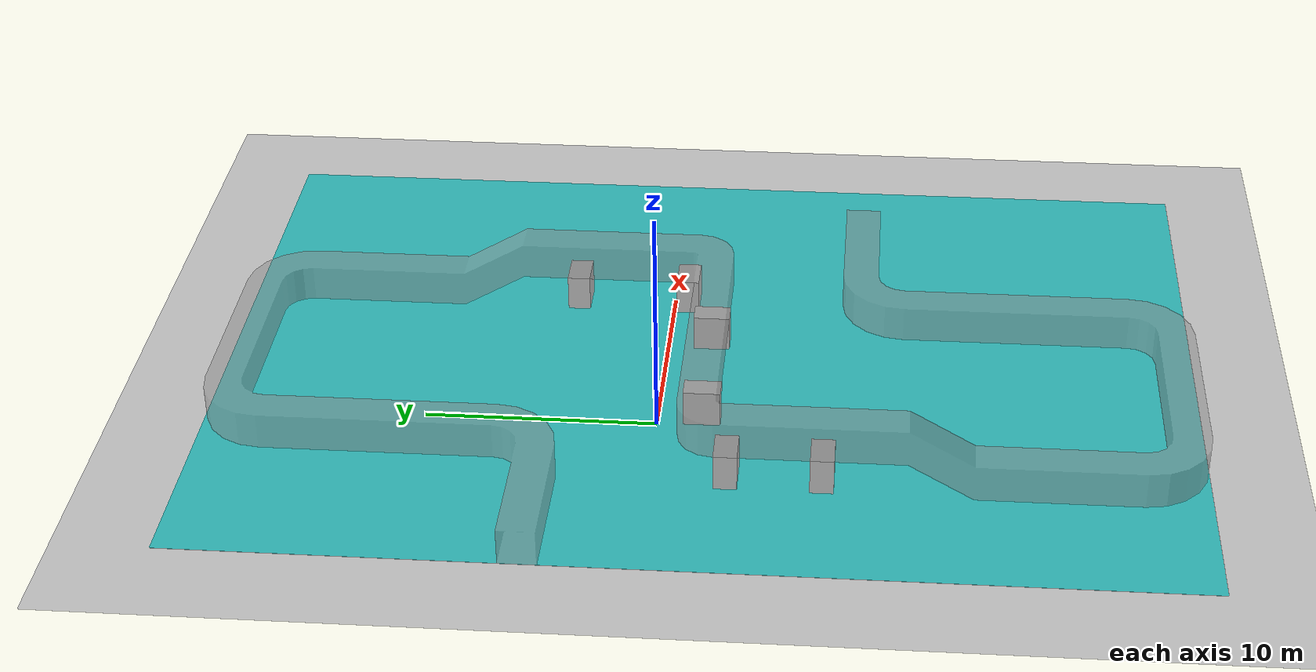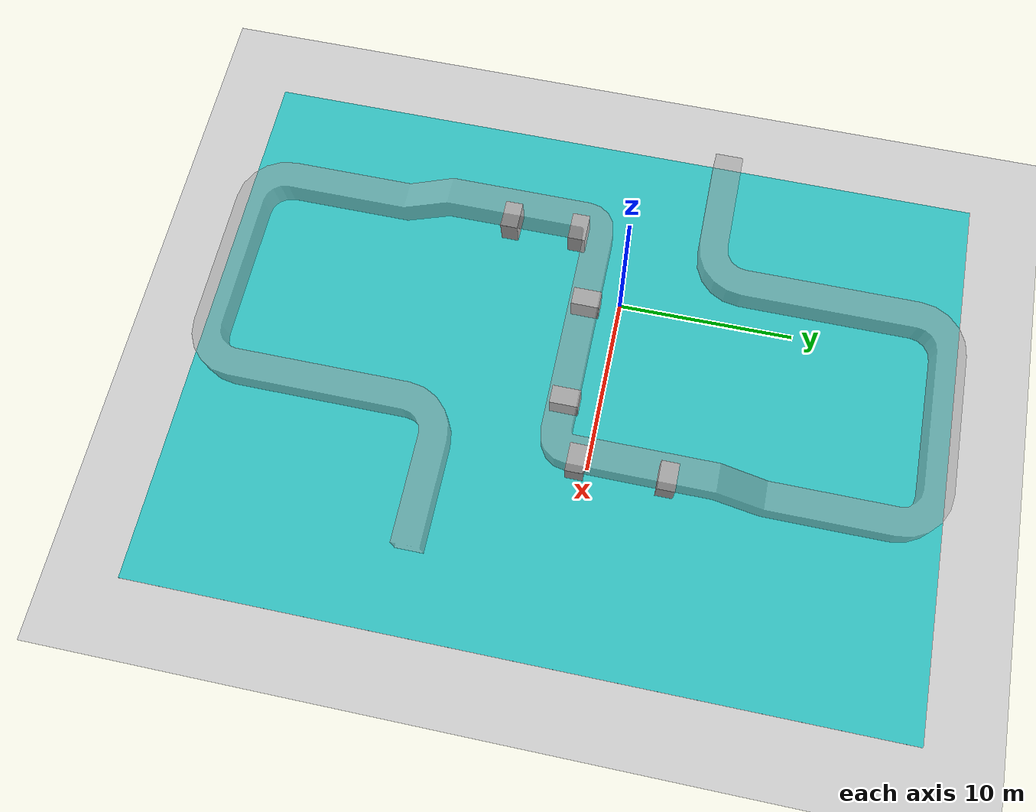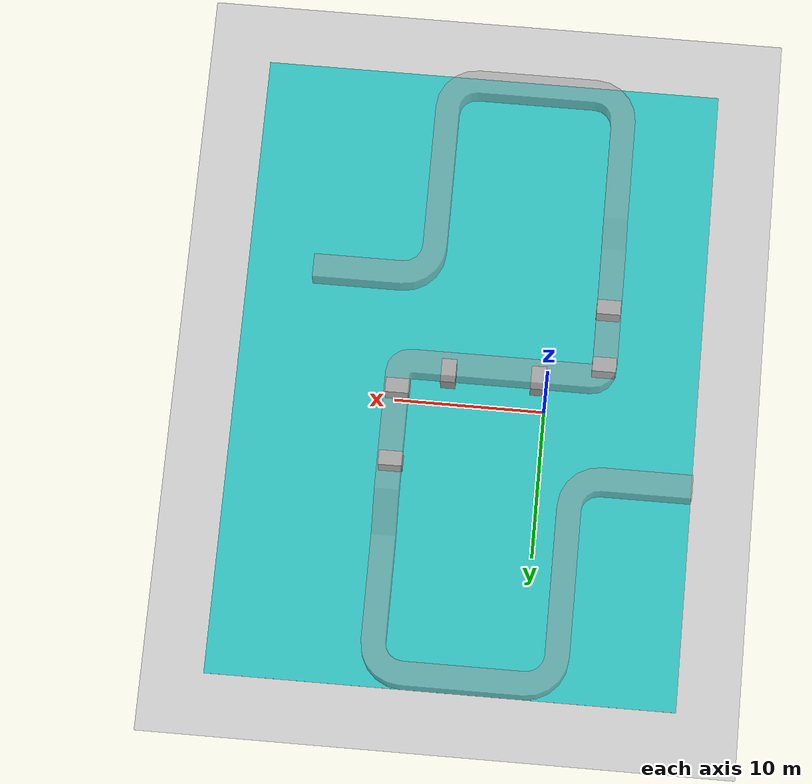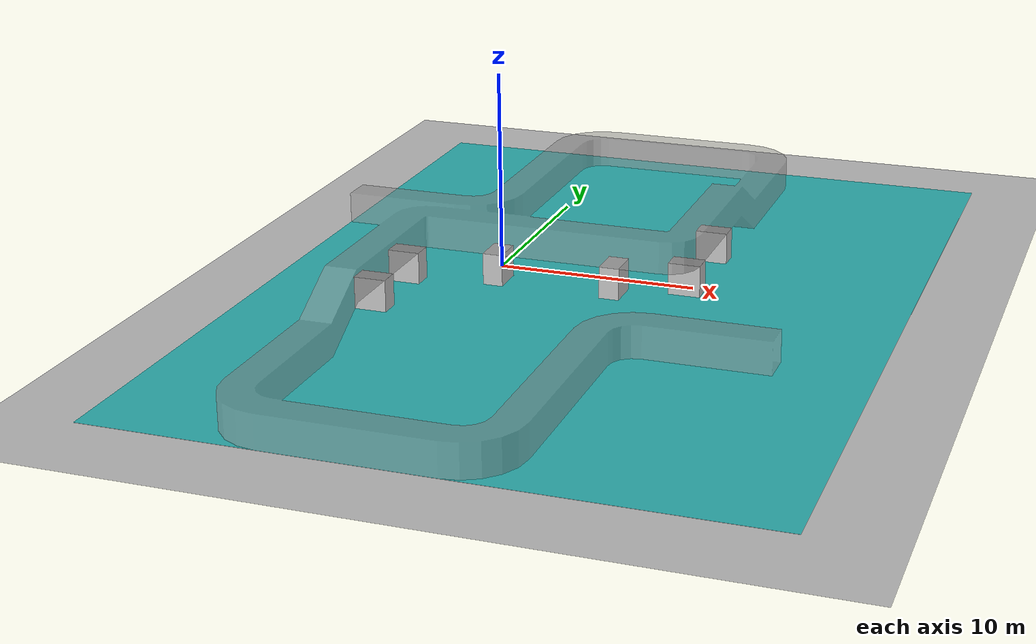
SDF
<sdf version="1.7">
 <world name="default">
  <light name="sun" type="directional">
   <pose>0 0 10 0 -0 0</pose>
   <diffuse>0.8 0.8 0.8 1</diffuse>
   <specular>0.2 0.2 0.2 1</specular>
   <attenuation>
    <range>1000</range>
    <constant>0.9</constant>
    <linear>0.01</linear>
    <quadratic>0.001</quadratic>
   </attenuation>
   <direction>-0.5 0.1 -0.9</direction>
   <spot><inner_angle>0</inner_angle><outer_angle>0</outer_angle><falloff>0</falloff></spot>
  </light>
  <model name="ground_plane">
   <static>1</static>
   <link name="link">
    <collision name="collision">
     <geometry><plane><normal>0 0 1</normal><size>100 100</size></plane></geometry>
     <surface>
      <contact><collide_bitmask>65535</collide_bitmask></contact>
      <friction><ode><mu>100</mu><mu2>50</mu2></ode></friction>
     </surface>
    </collision>
    <visual name="visual">
     <cast_shadows>0</cast_shadows>
     <geometry><plane><normal>0 0 1</normal><size>100 100</size></plane></geometry>
     <material>
      <script><uri>file://media/materials/scripts/gazebo.material</uri><name>Gazebo/Grey</name></script>
     </material>
    </visual>
   </link>
  </model>
  <gravity>0 0 -9.8</gravity>
  <magnetic_field>6e-06 2.3e-05 -4.2e-05</magnetic_field>
  <atmosphere type="adiabatic"/>
  <physics type="ode">
   <max_step_size>0.001</max_step_size>
   <real_time_factor>1</real_time_factor>
   <real_time_update_rate>1000</real_time_update_rate>
  </physics>
  <scene><ambient>0.4 0.4 0.4 1</ambient><background>0.7 0.7 0.7 1</background><shadows>1</shadows></scene>
  <spherical_coordinates>
   <surface_model>EARTH_WGS84</surface_model>
   <latitude_deg>0</latitude_deg>
   <longitude_deg>0</longitude_deg>
   <elevation>0</elevation>
   <heading_deg>0</heading_deg>
  </spherical_coordinates>
  <model name="piping_160_urdf">
   <link name="base_link">
    <inertial>
     <pose>3.86355 -1.74385 0.239438 0 -0 0</pose>
     <mass>39721</mass>
     <inertia>
      <ixx>2.64248e+06</ixx>
      <ixy>23191</ixy>
      <ixz>-47134.7</ixz>
      <iyy>3.59717e+06</iyy>
      <iyz>-4525.77</iyz>
      <izz>2.07768e+06</izz>
     </inertia>
    </inertial>
    <collision name="base_link_collision">
     <geometry>
      <mesh>
       <scale>1 1 1</scale>
       <uri>/home/tymiao/mty/autolabor_pro1_pip_teleop/src/piping_160_urdf/meshes/base_link.STL</uri>
      </mesh>
     </geometry>
     <surface><friction><ode><mu>0.5</mu><mu2>0.5</mu2></ode></friction></surface>
    </collision>
    <collision name="base_link_fixed_joint_lump__holder_Link_collision_1">
     <pose>-3.7484 -7.2158 -1.5875 1.5708 -0 0</pose>
     <geometry>
      <mesh>
       <scale>1 1 1</scale>
       <uri>/home/tymiao/mty/autolabor_pro1_pip_teleop/src/piping_160_urdf/meshes/holder_Link.STL</uri>
      </mesh>
     </geometry>
     <surface><friction><ode><mu>0.5</mu><mu2>0.5</mu2></ode></friction></surface>
    </collision>
    <collision name="base_link_fixed_joint_lump__piping_link_collision_2">
     <pose>16.252 -7.687 -1.5875 1.5708 -0 -3.14159</pose>
     <geometry>
      <mesh>
       <scale>1 1 1</scale>
       <uri>/home/tymiao/mty/autolabor_pro1_pip_teleop/src/piping_160_urdf/meshes/piping_link.STL</uri>
      </mesh>
     </geometry>
     <surface><friction><ode><mu>0.6</mu><mu2>0.6</mu2></ode></friction></surface>
    </collision>
    <visual name="base_link_visual">
     <geometry>
      <mesh>
       <scale>1 1 1</scale>
       <uri>/home/tymiao/mty/autolabor_pro1_pip_teleop/src/piping_160_urdf/meshes/base_link.STL</uri>
      </mesh>
     </geometry>
     <material>
      <script><name>Gazebo/Turquoise</name><uri>file://media/materials/scripts/gazebo.material</uri></script>
     </material>
    </visual>
    <visual name="base_link_fixed_joint_lump__holder_Link_visual_1">
     <pose>-3.7484 -7.2158 -1.5875 1.5708 -0 0</pose>
     <geometry>
      <mesh>
       <scale>1 1 1</scale>
       <uri>/home/tymiao/mty/autolabor_pro1_pip_teleop/src/piping_160_urdf/meshes/holder_Link.STL</uri>
      </mesh>
     </geometry>
     <material>
      <script><name>Gazebo/CoM</name><uri>file://media/materials/scripts/gazebo.material</uri></script>
     </material>
    </visual>
    <visual name="base_link_fixed_joint_lump__piping_link_visual_2">
     <pose>16.252 -7.687 -1.5875 1.5708 -0 -3.14159</pose>
     <geometry>
      <mesh>
       <scale>1 1 1</scale>
       <uri>/home/tymiao/mty/autolabor_pro1_pip_teleop/src/piping_160_urdf/meshes/piping_link.STL</uri>
      </mesh>
     </geometry>
     <material>
      <script><name>Gazebo/GreyTransparent</name><uri>file://media/materials/scripts/gazebo.material</uri></script>
     </material>
    </visual>
   </link>
   <pose>0.000862 -0.000144 1.59737 -4e-06 -0 6e-06</pose>
  </model>
 </world>
</sdf>
